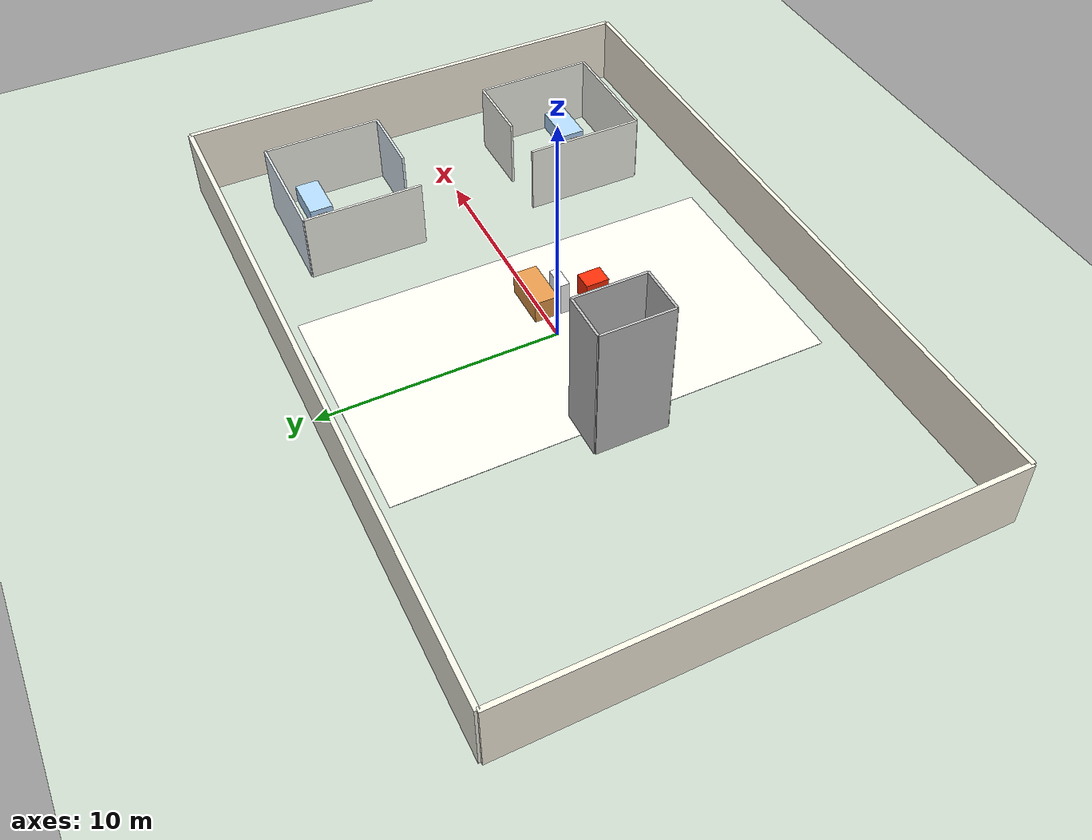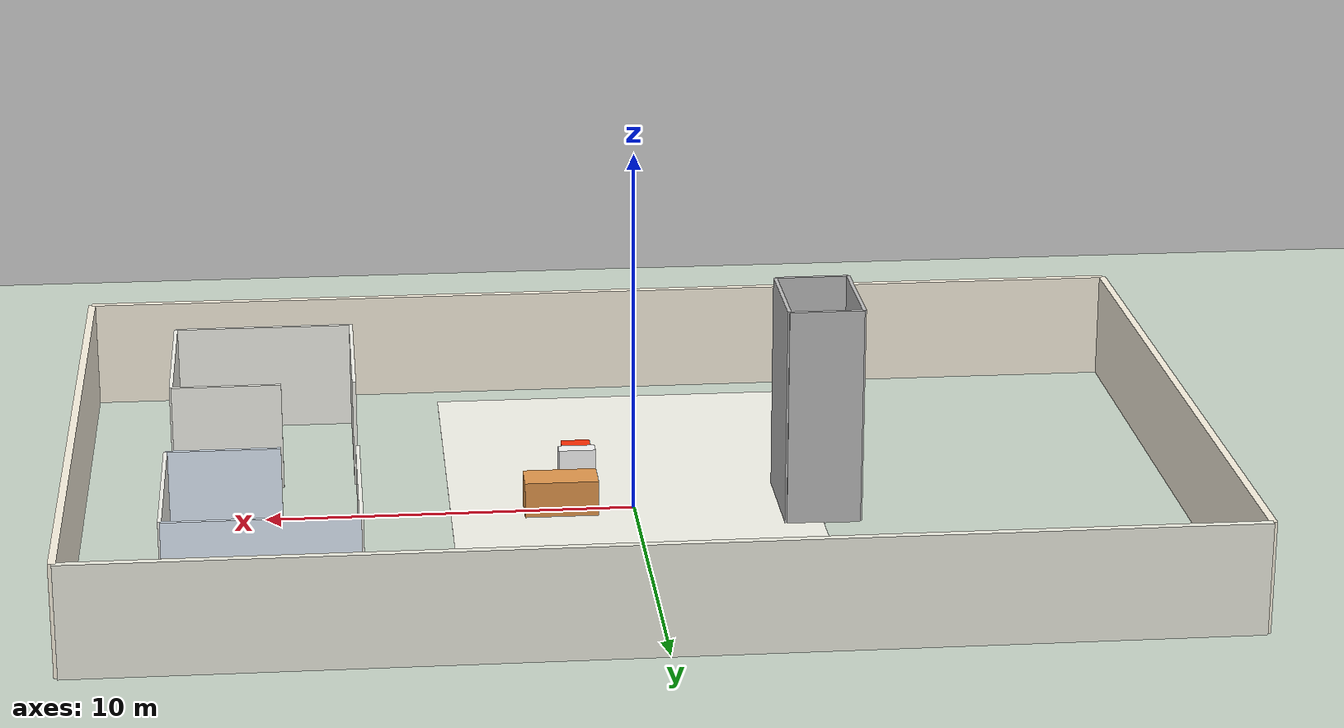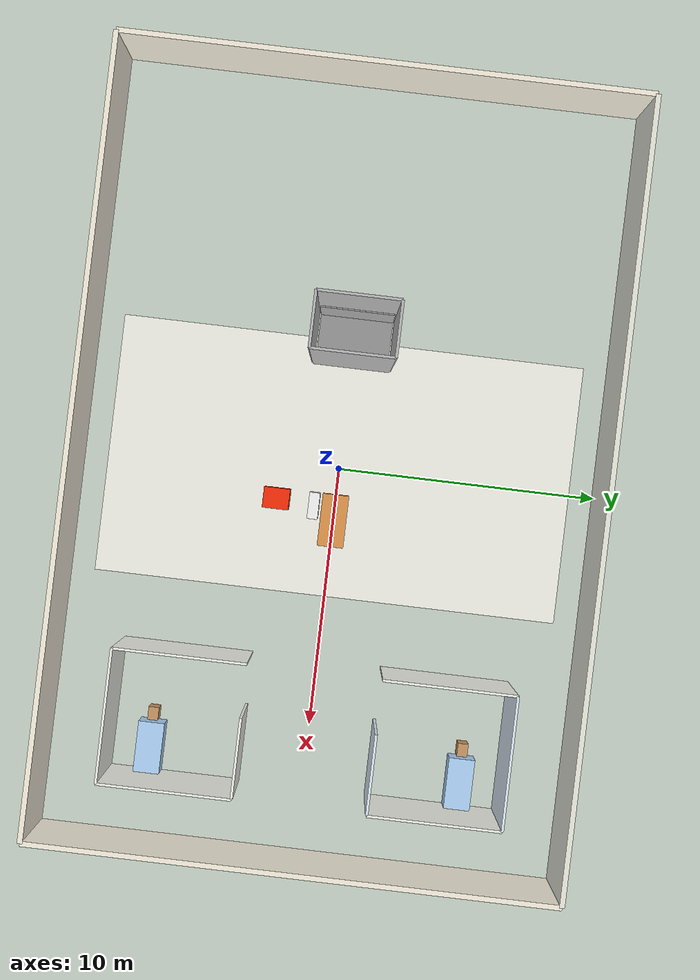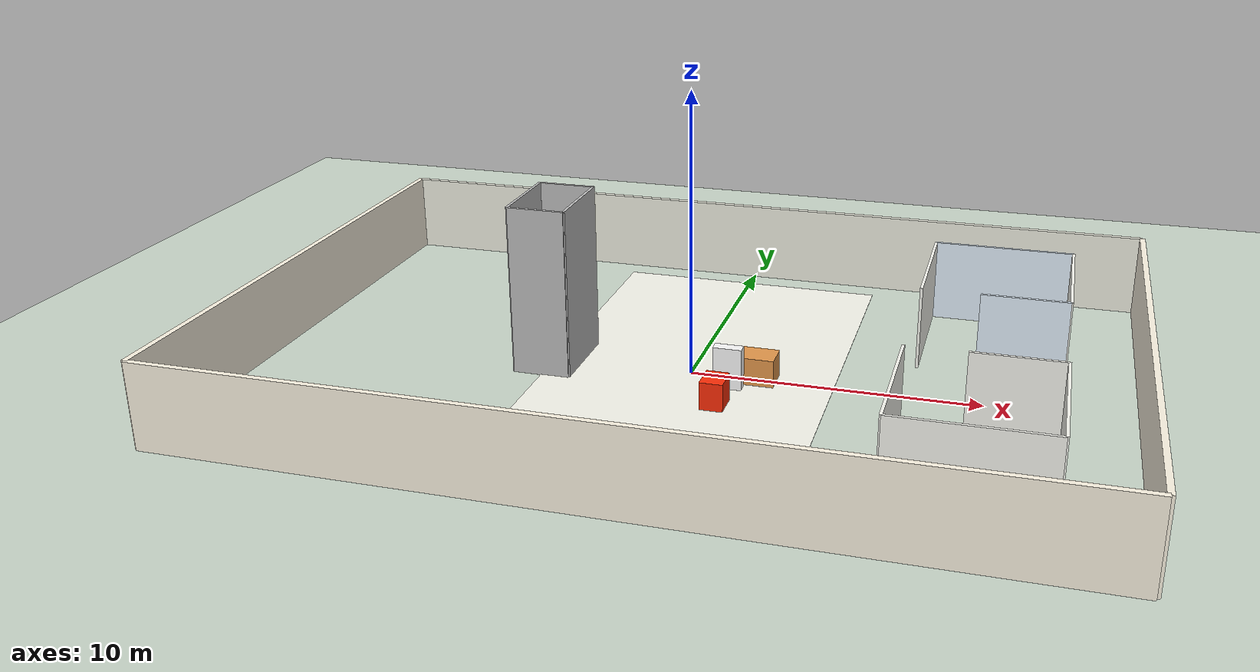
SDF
<?xml version="1.0"?>
<sdf version="1.9">
  <world name="nursing_home">

    <!-- Gazebo Harmonic 必需 Systems -->
    <plugin
      filename="gz-sim-physics-system"
      name="gz::sim::systems::Physics">
    </plugin>

    <plugin
      filename="gz-sim-user-commands-system"
      name="gz::sim::systems::UserCommands">
    </plugin>

    <plugin
      filename="gz-sim-scene-broadcaster-system"
      name="gz::sim::systems::SceneBroadcaster">
    </plugin>

    <plugin
      filename="gz-sim-sensors-system"
      name="gz::sim::systems::Sensors">
      <render_engine>ogre2</render_engine>
    </plugin>

    <plugin filename="gz-sim-contact-system" name="gz::sim::systems::Contact"/>
    <!-- 场景设置 -->
    <scene>
      <ambient>0.8 0.8 0.8 1.0</ambient>
      <background>0.7 0.8 1.0 1.0</background>
      <shadows>true</shadows>
      <grid>false</grid>
    </scene>

    <!-- 主光源 - 模拟阳光 -->
    <light type="directional" name="sun">
      <cast_shadows>true</cast_shadows>
      <pose>0 0 20 0 0 0</pose>
      <diffuse>1.0 1.0 0.95 1</diffuse>
      <specular>0.5 0.5 0.5 1</specular>
      <direction>-0.5 0.3 -0.9</direction>
      <intensity>1.0</intensity>
    </light>

    <!-- 补充光源 -->
    <light type="directional" name="ambient_fill">
      <cast_shadows>false</cast_shadows>
      <pose>0 0 15 0 0 0</pose>
      <diffuse>0.7 0.7 0.75 1</diffuse>
      <specular>0.2 0.2 0.2 1</specular>
      <direction>0.3 -0.3 -0.8</direction>
      <intensity>0.8</intensity>
    </light>

    <!-- 额外补光 - 从另一侧 -->
    <light type="directional" name="fill_light_2">
      <cast_shadows>false</cast_shadows>
      <pose>0 0 10 0 0 0</pose>
      <diffuse>0.6 0.6 0.7 1</diffuse>
      <specular>0.1 0.1 0.1 1</specular>
      <direction>0.5 0.5 -0.7</direction>
      <intensity>0.6</intensity>
    </light>

    <!-- 地面 -->
    <model name="ground_plane">
      <static>true</static>
      <link name="link">
        <collision name="collision">
          <geometry>
            <plane>
              <normal>0 0 1</normal>
              <size>100 100</size>
            </plane>
          </geometry>
        </collision>
        <visual name="visual">
          <geometry>
            <plane>
              <normal>0 0 1</normal>
              <size>100 100</size>
            </plane>
          </geometry>
          <material>
            <ambient>0.7 0.75 0.7 1</ambient>
            <diffuse>0.8 0.85 0.8 1</diffuse>
            <specular>0.2 0.2 0.2 1</specular>
          </material>
        </visual>
      </link>
    </model>

    <!-- 物理引擎 -->
    <physics type="ode">
      <max_step_size>0.001</max_step_size>
      <real_time_factor>1</real_time_factor>
      <real_time_update_rate>1000</real_time_update_rate>
    </physics>

    <!-- 前台桌子 -->
    <model name="reception_desk">
      <static>true</static>
      <pose>2 0 0.5 0 0 0</pose>
      <link name="link">
        <collision name="collision"><geometry><box><size>2 1 1</size></box></geometry></collision>
        <visual name="visual"><geometry><box><size>2 1 1</size></box></geometry>
          <material>
            <ambient>0.8 0.5 0.2 1</ambient>
            <diffuse>0.9 0.6 0.3 1</diffuse>
            <specular>0.3 0.3 0.3 1</specular>
          </material>
        </visual>
      </link>
    </model>

    <!-- 药品架 -->
    <model name="medicine_shelf">
      <static>true</static>
      <pose>1.5 -0.8 0.75 0 0 0</pose>
      <link name="link">
        <collision name="collision"><geometry><box><size>1 0.4 1.5</size></box></geometry></collision>
        <visual name="visual"><geometry><box><size>1 0.4 1.5</size></box></geometry>
          <material>
            <ambient>0.9 0.9 0.9 1</ambient>
            <diffuse>1.0 1.0 1.0 1</diffuse>
            <specular>0.4 0.4 0.4 1</specular>
          </material>
        </visual>
      </link>
    </model>

    <!-- 建筑外墙 -->
    <model name="building_walls">
      <static>true</static>
      <link name="north_wall">
        <pose>0 10 1.5 0 0 0</pose>
        <collision name="collision"><geometry><box><size>30 0.2 3</size></box></geometry></collision>
        <visual name="visual"><geometry><box><size>30 0.2 3</size></box></geometry>
          <material>
            <ambient>0.9 0.9 0.85 1</ambient>
            <diffuse>0.95 0.95 0.9 1</diffuse>
            <specular>0.2 0.2 0.2 1</specular>
          </material>
        </visual>
      </link>
      <link name="south_wall">
        <pose>0 -10 1.5 0 0 0</pose>
        <collision name="collision"><geometry><box><size>30 0.2 3</size></box></geometry></collision>
        <visual name="visual"><geometry><box><size>30 0.2 3</size></box></geometry>
          <material>
            <ambient>0.95 0.92 0.85 1</ambient>
            <diffuse>1.0 0.97 0.9 1</diffuse>
            <specular>0.3 0.3 0.3 1</specular>
          </material>
        </visual>
      </link>
      <link name="east_wall">
        <pose>15 0 1.5 0 0 0</pose>
        <collision name="collision"><geometry><box><size>0.2 20 3</size></box></geometry></collision>
        <visual name="visual"><geometry><box><size>0.2 20 3</size></box></geometry>
          <material>
            <ambient>0.95 0.92 0.85 1</ambient>
            <diffuse>1.0 0.97 0.9 1</diffuse>
            <specular>0.3 0.3 0.3 1</specular>
          </material>
        </visual>
      </link>
      <link name="west_wall">
        <pose>-15 0 1.5 0 0 0</pose>
        <collision name="collision"><geometry><box><size>0.2 20 3</size></box></geometry></collision>
        <visual name="visual"><geometry><box><size>0.2 20 3</size></box></geometry>
          <material>
            <ambient>0.95 0.92 0.85 1</ambient>
            <diffuse>1.0 0.97 0.9 1</diffuse>
            <specular>0.3 0.3 0.3 1</specular>
          </material>
        </visual>
      </link>
    </model>

    <!-- 房间101 (带床和床头柜) -->
    <model name="room_101">
      <static>true</static>
      <pose>10 5 0 0 0 0</pose>
      <link name="wall_north">
        <pose>0 2.5 1.5 0 0 0</pose>
        <collision name="collision"><geometry><box><size>5 0.1 3</size></box></geometry></collision>
        <visual name="visual"><geometry><box><size>5 0.1 3</size></box></geometry>
          <material>
            <ambient>0.85 0.9 0.95 1</ambient>
            <diffuse>0.9 0.95 1.0 1</diffuse>
            <specular>0.2 0.2 0.2 1</specular>
          </material>
        </visual>
      </link>
      <link name="wall_south">
        <pose>1 -2.5 1.5 0 0 0</pose>
        <collision name="collision"><geometry><box><size>3 0.1 3</size></box></geometry></collision>
        <visual name="visual"><geometry><box><size>3 0.1 3</size></box></geometry>
          <material>
            <ambient>0.85 0.9 0.95 1</ambient>
            <diffuse>0.9 0.95 1.0 1</diffuse>
            <specular>0.2 0.2 0.2 1</specular>
          </material>
        </visual>
      </link>
      <link name="wall_east">
        <pose>2.5 0 1.5 0 0 0</pose>
        <collision name="collision"><geometry><box><size>0.1 5 3</size></box></geometry></collision>
        <visual name="visual"><geometry><box><size>0.1 5 3</size></box></geometry>
          <material>
            <ambient>0.95 0.95 0.9 1</ambient>
            <diffuse>0.98 0.98 0.95 1</diffuse>
            <specular>0.1 0.1 0.1 1</specular>
          </material>
        </visual>
      </link>
      <link name="wall_west">
        <pose>-2.5 0 1.5 0 0 0</pose>
        <collision name="collision"><geometry><box><size>0.1 5 3</size></box></geometry></collision>
        <visual name="visual"><geometry><box><size>0.1 5 3</size></box></geometry>
          <material>
            <ambient>0.95 0.95 0.9 1</ambient>
            <diffuse>0.98 0.98 0.95 1</diffuse>
            <specular>0.1 0.1 0.1 1</specular>
          </material>
        </visual>
      </link>
      <link name="bed">
        <pose>1.5 1 0.4 0 0 0</pose>
        <collision name="collision"><geometry><box><size>2 1 0.8</size></box></geometry></collision>
        <visual name="visual"><geometry><box><size>2 1 0.8</size></box></geometry>
          <material>
            <ambient>0.6 0.8 1 1</ambient>
            <diffuse>0.7 0.85 1 1</diffuse>
            <specular>0.2 0.2 0.2 1</specular>
          </material>
        </visual>
      </link>
      <link name="nightstand">
        <pose>0.2 1 0.3 0 0 0</pose>
        <collision name="collision"><geometry><box><size>0.5 0.4 0.6</size></box></geometry></collision>
        <visual name="visual"><geometry><box><size>0.5 0.4 0.6</size></box></geometry>
          <material>
            <ambient>0.7 0.5 0.3 1</ambient>
            <diffuse>0.8 0.6 0.4 1</diffuse>
            <specular>0.3 0.3 0.3 1</specular>
          </material>
        </visual>
      </link>
    </model>

    <!-- 房间102 -->
    <model name="room_102">
      <static>true</static>
      <pose>10 -5 0 0 0 0</pose>
      <link name="wall_north">
        <pose>1 2.5 1.5 0 0 0</pose>
        <collision name="collision"><geometry><box><size>3 0.1 3</size></box></geometry></collision>
        <visual name="visual"><geometry><box><size>3 0.1 3</size></box></geometry>
          <material>
            <ambient>0.95 0.95 0.9 1</ambient>
            <diffuse>0.98 0.98 0.95 1</diffuse>
            <specular>0.1 0.1 0.1 1</specular>
          </material>
        </visual>
      </link>
      <link name="wall_south">
        <pose>0 -2.5 1.5 0 0 0</pose>
        <collision name="collision"><geometry><box><size>5 0.1 3</size></box></geometry></collision>
        <visual name="visual"><geometry><box><size>5 0.1 3</size></box></geometry>
          <material>
            <ambient>0.95 0.95 0.9 1</ambient>
            <diffuse>0.98 0.98 0.95 1</diffuse>
            <specular>0.1 0.1 0.1 1</specular>
          </material>
        </visual>
      </link>
      <link name="wall_east">
        <pose>2.5 0 1.5 0 0 0</pose>
        <collision name="collision"><geometry><box><size>0.1 5 3</size></box></geometry></collision>
        <visual name="visual"><geometry><box><size>0.1 5 3</size></box></geometry>
          <material>
            <ambient>0.95 0.95 0.9 1</ambient>
            <diffuse>0.98 0.98 0.95 1</diffuse>
            <specular>0.1 0.1 0.1 1</specular>
          </material>
        </visual>
      </link>
      <link name="wall_west">
        <pose>-2.5 0 1.5 0 0 0</pose>
        <collision name="collision"><geometry><box><size>0.1 5 3</size></box></geometry></collision>
        <visual name="visual"><geometry><box><size>0.1 5 3</size></box></geometry>
          <material>
            <ambient>0.95 0.95 0.9 1</ambient>
            <diffuse>0.98 0.98 0.95 1</diffuse>
            <specular>0.1 0.1 0.1 1</specular>
          </material>
        </visual>
      </link>
      <link name="bed">
        <pose>1.5 -1 0.4 0 0 0</pose>
        <collision name="collision"><geometry><box><size>2 1 0.8</size></box></geometry></collision>
        <visual name="visual"><geometry><box><size>2 1 0.8</size></box></geometry>
          <material>
            <ambient>0.6 0.8 1 1</ambient>
            <diffuse>0.7 0.85 1 1</diffuse>
            <specular>0.2 0.2 0.2 1</specular>
          </material>
        </visual>
      </link>
      <link name="nightstand">
        <pose>0.2 -1 0.3 0 0 0</pose>
        <collision name="collision"><geometry><box><size>0.5 0.4 0.6</size></box></geometry></collision>
        <visual name="visual"><geometry><box><size>0.5 0.4 0.6</size></box></geometry>
          <material>
            <ambient>0.7 0.5 0.3 1</ambient>
            <diffuse>0.8 0.6 0.4 1</diffuse>
            <specular>0.3 0.3 0.3 1</specular>
          </material>
        </visual>
      </link>
    </model>

    <!-- 电梯井 -->
    <model name="elevator_shaft">
      <static>true</static>
      <pose>-5 0 0 0 0 0</pose>
      <link name="shaft_wall_n">
        <pose>0 1.5 3 0 0 0</pose>
        <collision name="collision"><geometry><box><size>2 0.1 6</size></box></geometry></collision>
        <visual name="visual"><geometry><box><size>2 0.1 6</size></box></geometry>
          <material>
            <ambient>0.7 0.7 0.7 1</ambient>
            <diffuse>0.75 0.75 0.75 1</diffuse>
            <specular>0.3 0.3 0.3 1</specular>
          </material>
        </visual>
      </link>
      <link name="shaft_wall_s">
        <pose>0 -1.5 3 0 0 0</pose>
        <collision name="collision"><geometry><box><size>2 0.1 6</size></box></geometry></collision>
        <visual name="visual"><geometry><box><size>2 0.1 6</size></box></geometry>
          <material>
            <ambient>0.7 0.7 0.7 1</ambient>
            <diffuse>0.75 0.75 0.75 1</diffuse>
            <specular>0.3 0.3 0.3 1</specular>
          </material>
        </visual>
      </link>
      <link name="shaft_wall_e">
        <pose>1 0 3 0 0 0</pose>
        <collision name="collision"><geometry><box><size>0.1 3 6</size></box></geometry></collision>
        <visual name="visual"><geometry><box><size>0.1 3 6</size></box></geometry>
          <material>
            <ambient>0.7 0.7 0.7 1</ambient>
            <diffuse>0.75 0.75 0.75 1</diffuse>
            <specular>0.3 0.3 0.3 1</specular>
          </material>
        </visual>
      </link>
      <link name="shaft_wall_w">
        <pose>-1 0 3 0 0 0</pose>
        <collision name="collision"><geometry><box><size>0.1 3 6</size></box></geometry></collision>
        <visual name="visual"><geometry><box><size>0.1 3 6</size></box></geometry>
          <material>
            <ambient>0.7 0.7 0.7 1</ambient>
            <diffuse>0.75 0.75 0.75 1</diffuse>
            <specular>0.3 0.3 0.3 1</specular>
          </material>
        </visual>
      </link>
    </model>

    <!-- 电梯轿厢 -->
    <model name="elevator_car">
      <pose>-5 0 0.1 0 0 0</pose>
      <link name="platform">
        <inertial>
          <mass>200</mass>
          <inertia><ixx>50</ixx><iyy>50</iyy><izz>50</izz></inertia>
        </inertial>
        <collision name="collision"><geometry><box><size>1.8 2.8 0.1</size></box></geometry></collision>
        <visual name="visual"><geometry><box><size>1.8 2.8 0.1</size></box></geometry>
          <material>
            <ambient>0.5 0.5 0.5 1</ambient>
            <diffuse>0.6 0.6 0.6 1</diffuse>
            <specular>0.4 0.4 0.4 1</specular>
          </material>
        </visual>
      </link>
      <link name="wall_back">
        <pose>-0.9 0 1.2 0 0 0</pose>
        <collision name="collision"><geometry><box><size>0.05 2.8 2.4</size></box></geometry></collision>
        <visual name="visual"><geometry><box><size>0.05 2.8 2.4</size></box></geometry>
          <material>
            <ambient>0.6 0.6 0.6 1</ambient>
            <diffuse>0.7 0.7 0.7 1</diffuse>
            <specular>0.5 0.5 0.5 1</specular>
          </material>
        </visual>
      </link>
    </model>

    <!-- 走廊 -->
    <model name="corridor_floor">
      <static>true</static>
      <pose>0 0 0.01 0 0 0</pose>
      <link name="link">
        <collision name="collision"><geometry><box><size>10 18 0.02</size></box></geometry></collision>
        <visual name="visual"><geometry><box><size>10 18 0.02</size></box></geometry>
          <material>
            <ambient>0.92 0.92 0.88 1</ambient>
            <diffuse>0.98 0.98 0.94 1</diffuse>
            <specular>0.2 0.2 0.2 1</specular>
          </material>
        </visual>
      </link>
    </model>

    <model name="narrow_gap_obstacle">
      <static>true</static>
      <pose>1.4 -2.26 0.5 0 0 0</pose>
      <link name="link">
        <collision name="collision">
          <geometry><box><size>0.8 1.0 1.0</size></box></geometry>
        </collision>
        <visual name="visual">
          <geometry><box><size>0.8 1.0 1.0</size></box></geometry>
          <material>
            <ambient>1.0 0.12 0.02 1</ambient>
            <diffuse>1.0 0.18 0.03 1</diffuse>
            <specular>0.15 0.15 0.15 1</specular>
          </material>
        </visual>
      </link>
    </model>
</world>
</sdf>
